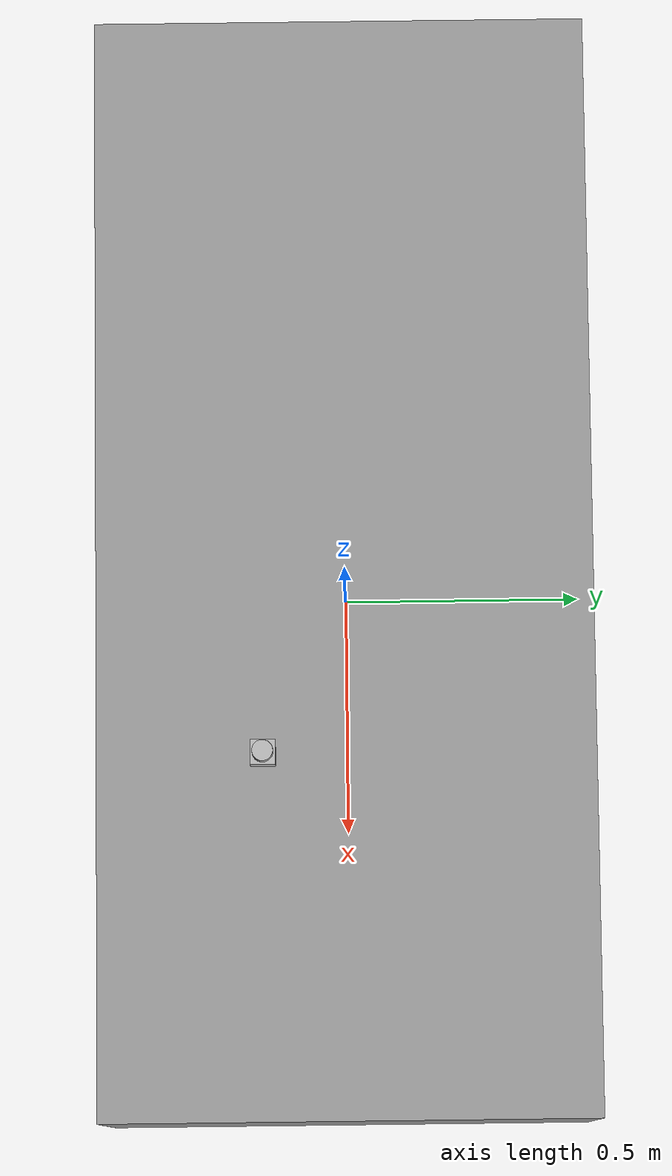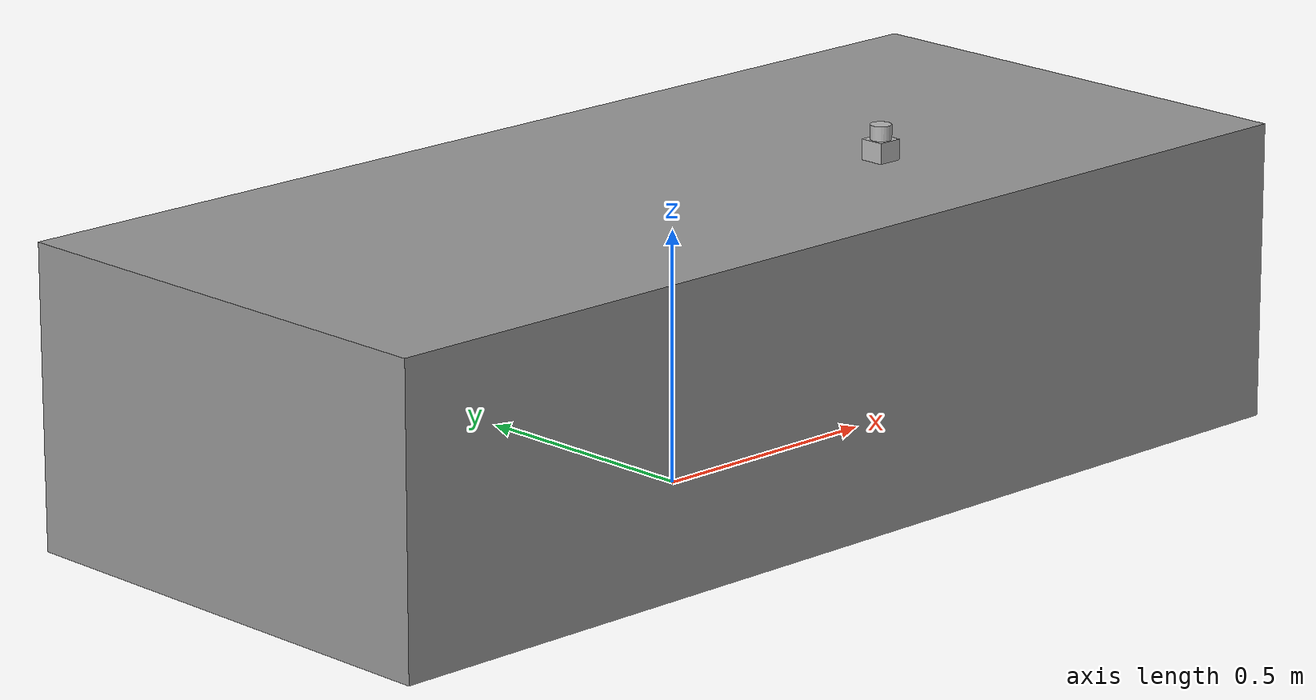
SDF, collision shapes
<?xml version='1.0'?>
<sdf version='1.6'>
  <model name='Robot5'>
    <link name='link_0'>
      <pose frame=''>0 0 0.3 -0 -0 -0</pose>
      <inertial>
        <mass>2</mass>
        <inertia>
          <ixx>0.149551</ixx>
          <ixy>0</ixy>
          <ixz>0</ixz>
          <iyy>0.59142</iyy>
          <iyz>0</iyz>
          <izz>0.663026</izz>
        </inertia>
        <pose frame=''>0 0 0 0 -0 0</pose>
      </inertial>
      <self_collide>0</self_collide>
      <kinematic>0</kinematic>
      <visual name='visual'>
        <pose frame=''>0 0 0 0 -0 0</pose>
        <geometry>
          <box>
            <size>2.23515 1 0.593678</size>
          </box>
        </geometry>
        <material>
          <lighting>1</lighting>
          <script>
            <uri>file://media/materials/scripts/gazebo.material</uri>
            <name>Gazebo/Grey</name>
          </script>
          <shader type='vertex'>
            <normal_map>__default__</normal_map>
          </shader>
          <ambient>0.3 0.3 0.3 1</ambient>
          <diffuse>0.7 0.7 0.7 1</diffuse>
          <specular>0.01 0.01 0.01 1</specular>
          <emissive>0 0 0 1</emissive>
        </material>
        <transparency>0</transparency>
        <cast_shadows>1</cast_shadows>
      </visual>
      <collision name='collision'>
        <laser_retro>0</laser_retro>
        <max_contacts>10</max_contacts>
        <pose frame=''>0 0 0 0 -0 0</pose>
        <geometry>
          <box>
            <size>2.23515 1 0.593678</size>
          </box>
        </geometry>
        <surface>
          <friction>
            <ode>
              <mu>1</mu>
              <mu2>1</mu2>
              <fdir1>0 0 0</fdir1>
              <slip1>0</slip1>
              <slip2>0</slip2>
            </ode>
            <torsional>
              <coefficient>1</coefficient>
              <patch_radius>0</patch_radius>
              <surface_radius>0</surface_radius>
              <use_patch_radius>1</use_patch_radius>
              <ode>
                <slip>0</slip>
              </ode>
            </torsional>
          </friction>
          <bounce>
            <restitution_coefficient>0</restitution_coefficient>
            <threshold>1e+06</threshold>
          </bounce>
          <contact>
            <collide_without_contact>0</collide_without_contact>
            <collide_without_contact_bitmask>1</collide_without_contact_bitmask>
            <collide_bitmask>1</collide_bitmask>
            <ode>
              <soft_cfm>0</soft_cfm>
              <soft_erp>0.2</soft_erp>
              <kp>1e+13</kp>
              <kd>1</kd>
              <max_vel>0.01</max_vel>
              <min_depth>0</min_depth>
            </ode>
            <bullet>
              <split_impulse>1</split_impulse>
              <split_impulse_penetration_threshold>-0.01</split_impulse_penetration_threshold>
              <soft_cfm>0</soft_cfm>
              <soft_erp>0.2</soft_erp>
              <kp>1e+13</kp>
              <kd>1</kd>
            </bullet>
          </contact>
        </surface>
      </collision>
    </link>
    <model name='hokuyo'>
      <pose frame=''>0.389192 -0.166667 0.631889 -0 -0 -0</pose>
      <link name='link'>
        <inertial>
          <mass>0.1</mass>
          <inertia>
            <ixx>1</ixx>
            <ixy>0</ixy>
            <ixz>0</ixz>
            <iyy>1</iyy>
            <iyz>0</iyz>
            <izz>1</izz>
          </inertia>
        </inertial>
        <visual name='visual'>
          <geometry>
            <mesh>
              <uri>model://hokuyo/meshes/hokuyo.dae</uri>
            </mesh>
          </geometry>
        </visual>
        <collision name='collision-base'>
          <pose frame=''>0 0 -0.0145 0 -0 0</pose>
          <geometry>
            <box>
              <size>0.05 0.05 0.041</size>
            </box>
          </geometry>
          <max_contacts>10</max_contacts>
          <surface>
            <contact>
              <ode/>
            </contact>
            <bounce/>
            <friction>
              <torsional>
                <ode/>
              </torsional>
              <ode/>
            </friction>
          </surface>
        </collision>
        <collision name='collision-top'>
          <pose frame=''>0 0 0.0205 0 -0 0</pose>
          <geometry>
            <cylinder>
              <radius>0.021</radius>
              <length>0.029</length>
            </cylinder>
          </geometry>
          <max_contacts>10</max_contacts>
          <surface>
            <contact>
              <ode/>
            </contact>
            <bounce/>
            <friction>
              <torsional>
                <ode/>
              </torsional>
              <ode/>
            </friction>
          </surface>
        </collision>
        <sensor name='laser' type='ray'>
          <pose frame=''>0.01 0 0.0175 0 -0 0</pose>
          <ray>
            <scan>
              <horizontal>
                <samples>640</samples>
                <resolution>1</resolution>
                <min_angle>-2.26889</min_angle>
                <max_angle>2.2689</max_angle>
              </horizontal>
              <vertical>
                <samples>1</samples>
                <min_angle>0</min_angle>
                <max_angle>0</max_angle>
              </vertical>
            </scan>
            <range>
              <min>0.08</min>
              <max>10</max>
              <resolution>0.01</resolution>
            </range>
          </ray>
          <plugin name='laser' filename='libRayPlugin.so'/>
          <always_on>1</always_on>
          <update_rate>30</update_rate>
          <visualize>1</visualize>
        </sensor>
        <self_collide>0</self_collide>
        <kinematic>0</kinematic>
      </link>
    </model>
    <joint name='link_0_JOINT_0_0' type='revolute'>
      <parent>link_0</parent>
      <child>hokuyo::link</child>
      <pose frame=''>0 0 0 0 -0 0</pose>
      <axis>
        <xyz>1 0 0</xyz>
        <use_parent_model_frame>0</use_parent_model_frame>
        <limit>
          <lower>-1.79769e+308</lower>
          <upper>1.79769e+308</upper>
          <effort>-1</effort>
          <velocity>-1</velocity>
        </limit>
        <dynamics>
          <spring_reference>0</spring_reference>
          <spring_stiffness>0</spring_stiffness>
          <damping>0</damping>
          <friction>0</friction>
        </dynamics>
      </axis>
      <physics>
        <ode>
          <limit>
            <cfm>0</cfm>
            <erp>0.2</erp>
          </limit>
          <suspension>
            <cfm>0</cfm>
            <erp>0.2</erp>
          </suspension>
        </ode>
      </physics>
    </joint>
    <static>0</static>
    <allow_auto_disable>1</allow_auto_disable>
    <plugin name='libmodel_plugin.so' filename='libmodel_plugin.so'/>
  </model>
</sdf>
